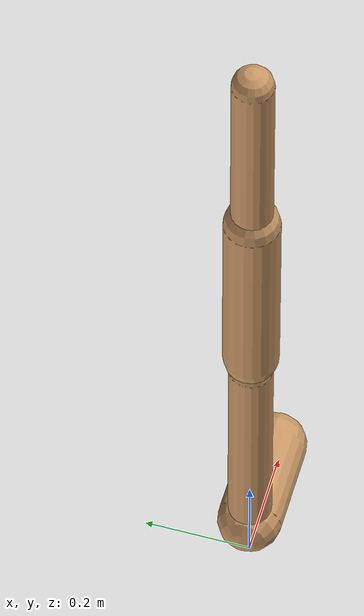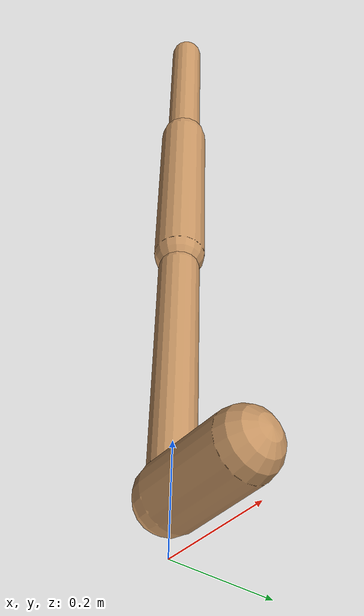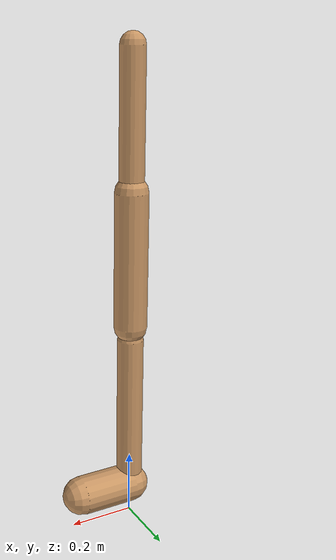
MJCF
<mujoco model="walker2d">
  <compiler angle="degree" coordinate="global" inertiafromgeom="true" />
  <default>
    <joint armature="0.01" damping=".1" limited="true" />
    <geom conaffinity="0" condim="3" contype="1" density="1000" friction="0.8 .1 .1" rgba="0.8 0.6 .4 1" />
  </default>
  <option integrator="RK4" timestep="0.002" />
  <worldbody>

    <body name="torso" pos="0 0 -0.08890997260452335">
      <joint armature="0" axis="1 0 0" damping="0" limited="false" name="ignorex" pos="0 0 0" stiffness="0" type="slide" />
      <joint armature="0" axis="0 0 1" damping="0" limited="false" name="ignorez" pos="0 0 0" ref="1.25" stiffness="0" type="slide" />
      <joint armature="0" axis="0 1 0" damping="0" limited="false" name="ignorey" pos="0 0 0" stiffness="0" type="hinge" />
      <geom fromto="0 0 1.45 0 0 1.05" name="torso_geom" size="0.037177741231626926" type="capsule" />
      <body name="thigh">
        <joint axis="0 -1 0" name="thigh_joint" pos="0 0 1.05" range="-150 0" type="hinge" />
        <geom fromto="0.0 0.0 1.05 0.0 0.0 0.64211525018109" name="thigh_geom" size="0.05054592868143526" type="capsule" />
        <body name="leg" pos="0.0 0.0 0.04211525018108997">
          <joint axis="0 -1 0" name="leg_joint" pos="0 0 0.6" range="-150 0" type="hinge" />
          <geom fromto="0.0 0.0 0.6 0.0 0.0 0.14679472242343333" name="leg_geom" size="0.04043674294514821" type="capsule" />
          <body name="foot" pos="0.0 0.0 0.04679472242343333">
            <joint axis="0 -1 0" name="foot_joint" pos="0 0 0.1" range="-45 45" type="hinge" />
            <geom fromto="0.0 0.0 0.1 0.17010637066071413 0.0 0.1" name="foot_geom" size="0.0601234533317377" type="capsule" />
          </body>
        </body>
      </body>

      <body name="thigh_left">
        <joint axis="0 -1 0" name="thigh_left_joint" pos="0 0 1.05" range="-150 0" type="hinge" />
        <geom fromto="0.0 0.0 1.05 0.0 0.0 0.64211525018109" name="thigh_left_geom" rgba=".7 .3 .6 1" size="0.05054592868143526" type="capsule" />
        <body name="leg_left" pos="0.0 0.0 0.04211525018108997">
          <joint axis="0 -1 0" name="leg_left_joint" pos="0 0 0.6" range="-150 0" type="hinge" />
          <geom fromto="0.0 0.0 0.6 0.0 0.0 0.14679472242343333" name="leg_left_geom" rgba=".7 .3 .6 1" size="0.04043674294514821" type="capsule" />
          <body name="foot_left" pos="0.0 0.0 0.04679472242343333">
            <joint axis="0 -1 0" name="foot_left_joint" pos="0 0 0.1" range="-45 45" type="hinge" />
            <geom fromto="0.0 0.0 0.1 0.17010637066071413 0.0 0.1" name="foot_left_geom" rgba=".7 .3 .6 1" size="0.0601234533317377" type="capsule" />
          </body>
        </body>
      </body>
    </body>
  </worldbody>
  <actuator>

    <motor ctrllimited="true" ctrlrange="-1.0 1.0" gear="100" joint="thigh_joint" />
    <motor ctrllimited="true" ctrlrange="-1.0 1.0" gear="100" joint="leg_joint" />
    <motor ctrllimited="true" ctrlrange="-1.0 1.0" gear="100" joint="foot_joint" />
    <motor ctrllimited="true" ctrlrange="-1.0 1.0" gear="100" joint="thigh_left_joint" />
    <motor ctrllimited="true" ctrlrange="-1.0 1.0" gear="100" joint="leg_left_joint" />
    <motor ctrllimited="true" ctrlrange="-1.0 1.0" gear="100" joint="foot_left_joint" />

  </actuator>
</mujoco>
